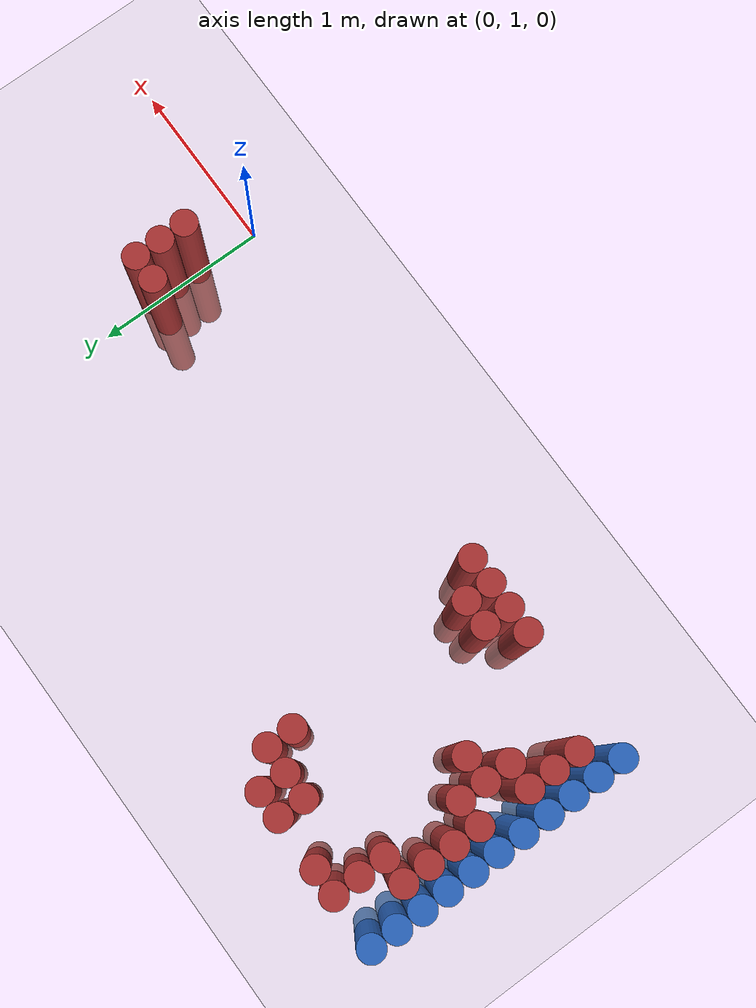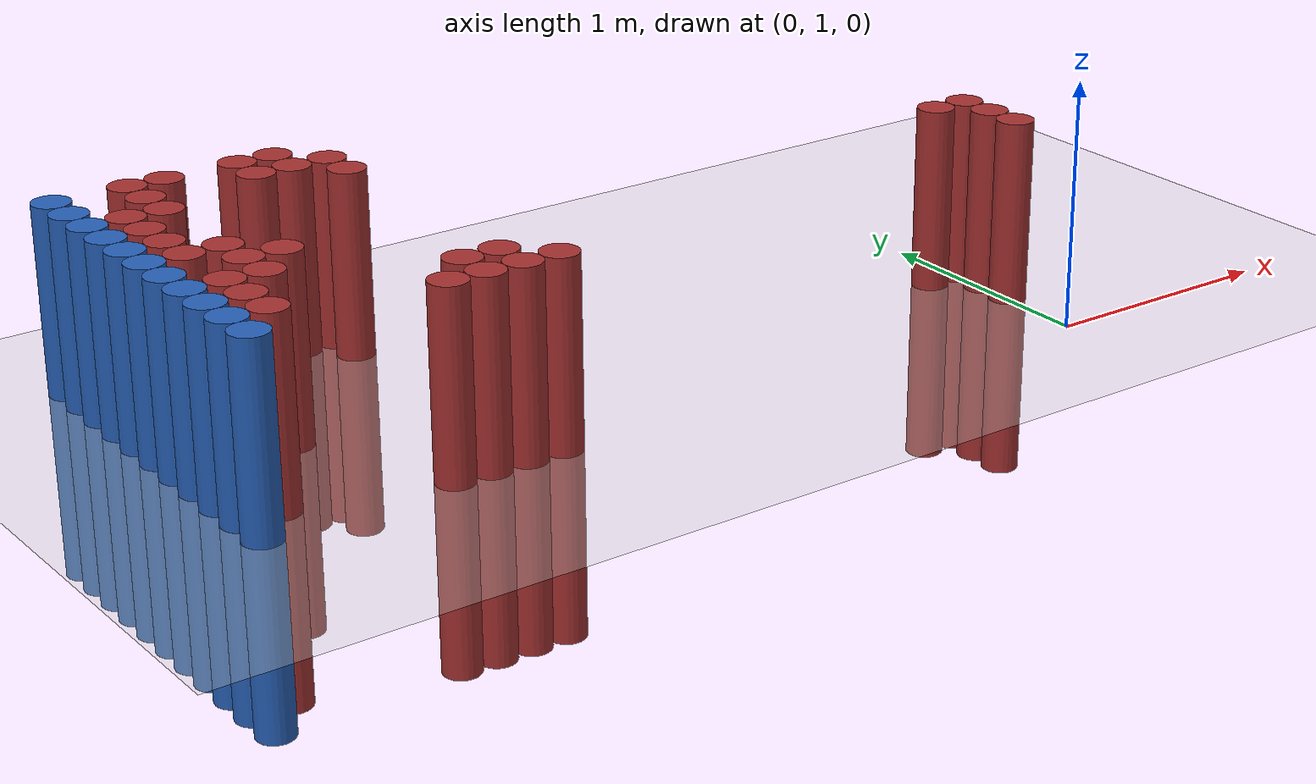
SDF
<sdf version="1.6">
 <world name="default">
  <model name="ground_plane">
   <static>1</static>
   <link name="link">
    <collision name="collision">
     <geometry><plane><normal>0 0 1</normal><size>100 100</size></plane></geometry>
     <surface><friction><ode><mu>100</mu><mu2>50</mu2></ode></friction></surface>
    </collision>
    <visual name="visual">
     <cast_shadows>0</cast_shadows>
     <geometry><plane><normal>0 0 1</normal><size>100 100</size></plane></geometry>
     <material>
      <script><uri>file://media/materials/scripts/gazebo.material</uri><name>Gazebo/Grey</name></script>
     </material>
    </visual>
   </link>
  </model>
  <model name="unit_cylinder_131">
   <static>1</static>
   <pose>-3.425000 1.225000 0.000000 0.000000 0.000000 0.000000</pose>
   <link name="link">
    <inertial>
     <mass>1</mass>
     <inertia><ixx>0.145833</ixx><ixy>0</ixy><ixz>0</ixz><iyy>0.145833</iyy><iyz>0</iyz><izz>0.125</izz></inertia>
    </inertial>
    <collision name="collision">
     <geometry><cylinder><radius>0.075000</radius><length>1.5</length></cylinder></geometry>
    </collision>
    <visual name="visual">
     <geometry><cylinder><radius>0.075000</radius><length>1.5</length></cylinder></geometry>
     <material>
      <ambient>0.152000 0.379000 0.720000 1</ambient>
      <diffuse>0.152000 0.379000 0.720000 1</diffuse>
     </material>
     <material>
      <script><name>Gazebo/Grey</name><uri>file://media/materials/scripts/gazebo.material</uri></script>
     </material>
    </visual>
   </link>
  </model>
  <model name="unit_cylinder_133">
   <static>1</static>
   <pose>-3.425000 1.375000 0.000000 0.000000 0.000000 0.000000</pose>
   <link name="link">
    <inertial>
     <mass>1</mass>
     <inertia><ixx>0.145833</ixx><ixy>0</ixy><ixz>0</ixz><iyy>0.145833</iyy><iyz>0</iyz><izz>0.125</izz></inertia>
    </inertial>
    <collision name="collision">
     <geometry><cylinder><radius>0.075000</radius><length>1.5</length></cylinder></geometry>
    </collision>
    <visual name="visual">
     <geometry><cylinder><radius>0.075000</radius><length>1.5</length></cylinder></geometry>
     <material>
      <ambient>0.152000 0.379000 0.720000 1</ambient>
      <diffuse>0.152000 0.379000 0.720000 1</diffuse>
     </material>
     <material>
      <script><name>Gazebo/Grey</name><uri>file://media/materials/scripts/gazebo.material</uri></script>
     </material>
    </visual>
   </link>
  </model>
  <model name="unit_cylinder_135">
   <static>1</static>
   <pose>-3.425000 1.525000 0.000000 0.000000 0.000000 0.000000</pose>
   <link name="link">
    <inertial>
     <mass>1</mass>
     <inertia><ixx>0.145833</ixx><ixy>0</ixy><ixz>0</ixz><iyy>0.145833</iyy><iyz>0</iyz><izz>0.125</izz></inertia>
    </inertial>
    <collision name="collision">
     <geometry><cylinder><radius>0.075000</radius><length>1.5</length></cylinder></geometry>
    </collision>
    <visual name="visual">
     <geometry><cylinder><radius>0.075000</radius><length>1.5</length></cylinder></geometry>
     <material>
      <ambient>0.152000 0.379000 0.720000 1</ambient>
      <diffuse>0.152000 0.379000 0.720000 1</diffuse>
     </material>
     <material>
      <script><name>Gazebo/Grey</name><uri>file://media/materials/scripts/gazebo.material</uri></script>
     </material>
    </visual>
   </link>
  </model>
  <model name="unit_cylinder_137">
   <static>1</static>
   <pose>-3.425000 1.675000 0.000000 0.000000 0.000000 0.000000</pose>
   <link name="link">
    <inertial>
     <mass>1</mass>
     <inertia><ixx>0.145833</ixx><ixy>0</ixy><ixz>0</ixz><iyy>0.145833</iyy><iyz>0</iyz><izz>0.125</izz></inertia>
    </inertial>
    <collision name="collision">
     <geometry><cylinder><radius>0.075000</radius><length>1.5</length></cylinder></geometry>
    </collision>
    <visual name="visual">
     <geometry><cylinder><radius>0.075000</radius><length>1.5</length></cylinder></geometry>
     <material>
      <ambient>0.152000 0.379000 0.720000 1</ambient>
      <diffuse>0.152000 0.379000 0.720000 1</diffuse>
     </material>
     <material>
      <script><name>Gazebo/Grey</name><uri>file://media/materials/scripts/gazebo.material</uri></script>
     </material>
    </visual>
   </link>
  </model>
  <model name="unit_cylinder_139">
   <static>1</static>
   <pose>-3.425000 1.825000 0.000000 0.000000 0.000000 0.000000</pose>
   <link name="link">
    <inertial>
     <mass>1</mass>
     <inertia><ixx>0.145833</ixx><ixy>0</ixy><ixz>0</ixz><iyy>0.145833</iyy><iyz>0</iyz><izz>0.125</izz></inertia>
    </inertial>
    <collision name="collision">
     <geometry><cylinder><radius>0.075000</radius><length>1.5</length></cylinder></geometry>
    </collision>
    <visual name="visual">
     <geometry><cylinder><radius>0.075000</radius><length>1.5</length></cylinder></geometry>
     <material>
      <ambient>0.152000 0.379000 0.720000 1</ambient>
      <diffuse>0.152000 0.379000 0.720000 1</diffuse>
     </material>
     <material>
      <script><name>Gazebo/Grey</name><uri>file://media/materials/scripts/gazebo.material</uri></script>
     </material>
    </visual>
   </link>
  </model>
  <model name="unit_cylinder_141">
   <static>1</static>
   <pose>-3.425000 1.975000 0.000000 0.000000 0.000000 0.000000</pose>
   <link name="link">
    <inertial>
     <mass>1</mass>
     <inertia><ixx>0.145833</ixx><ixy>0</ixy><ixz>0</ixz><iyy>0.145833</iyy><iyz>0</iyz><izz>0.125</izz></inertia>
    </inertial>
    <collision name="collision">
     <geometry><cylinder><radius>0.075000</radius><length>1.5</length></cylinder></geometry>
    </collision>
    <visual name="visual">
     <geometry><cylinder><radius>0.075000</radius><length>1.5</length></cylinder></geometry>
     <material>
      <ambient>0.152000 0.379000 0.720000 1</ambient>
      <diffuse>0.152000 0.379000 0.720000 1</diffuse>
     </material>
     <material>
      <script><name>Gazebo/Grey</name><uri>file://media/materials/scripts/gazebo.material</uri></script>
     </material>
    </visual>
   </link>
  </model>
  <model name="unit_cylinder_143">
   <static>1</static>
   <pose>-3.425000 2.125000 0.000000 0.000000 0.000000 0.000000</pose>
   <link name="link">
    <inertial>
     <mass>1</mass>
     <inertia><ixx>0.145833</ixx><ixy>0</ixy><ixz>0</ixz><iyy>0.145833</iyy><iyz>0</iyz><izz>0.125</izz></inertia>
    </inertial>
    <collision name="collision">
     <geometry><cylinder><radius>0.075000</radius><length>1.5</length></cylinder></geometry>
    </collision>
    <visual name="visual">
     <geometry><cylinder><radius>0.075000</radius><length>1.5</length></cylinder></geometry>
     <material>
      <ambient>0.152000 0.379000 0.720000 1</ambient>
      <diffuse>0.152000 0.379000 0.720000 1</diffuse>
     </material>
     <material>
      <script><name>Gazebo/Grey</name><uri>file://media/materials/scripts/gazebo.material</uri></script>
     </material>
    </visual>
   </link>
  </model>
  <model name="unit_cylinder_145">
   <static>1</static>
   <pose>-3.425000 2.275000 0.000000 0.000000 0.000000 0.000000</pose>
   <link name="link">
    <inertial>
     <mass>1</mass>
     <inertia><ixx>0.145833</ixx><ixy>0</ixy><ixz>0</ixz><iyy>0.145833</iyy><iyz>0</iyz><izz>0.125</izz></inertia>
    </inertial>
    <collision name="collision">
     <geometry><cylinder><radius>0.075000</radius><length>1.5</length></cylinder></geometry>
    </collision>
    <visual name="visual">
     <geometry><cylinder><radius>0.075000</radius><length>1.5</length></cylinder></geometry>
     <material>
      <ambient>0.152000 0.379000 0.720000 1</ambient>
      <diffuse>0.152000 0.379000 0.720000 1</diffuse>
     </material>
     <material>
      <script><name>Gazebo/Grey</name><uri>file://media/materials/scripts/gazebo.material</uri></script>
     </material>
    </visual>
   </link>
  </model>
  <model name="unit_cylinder_147">
   <static>1</static>
   <pose>-3.425000 2.425000 0.000000 0.000000 0.000000 0.000000</pose>
   <link name="link">
    <inertial>
     <mass>1</mass>
     <inertia><ixx>0.145833</ixx><ixy>0</ixy><ixz>0</ixz><iyy>0.145833</iyy><iyz>0</iyz><izz>0.125</izz></inertia>
    </inertial>
    <collision name="collision">
     <geometry><cylinder><radius>0.075000</radius><length>1.5</length></cylinder></geometry>
    </collision>
    <visual name="visual">
     <geometry><cylinder><radius>0.075000</radius><length>1.5</length></cylinder></geometry>
     <material>
      <ambient>0.152000 0.379000 0.720000 1</ambient>
      <diffuse>0.152000 0.379000 0.720000 1</diffuse>
     </material>
     <material>
      <script><name>Gazebo/Grey</name><uri>file://media/materials/scripts/gazebo.material</uri></script>
     </material>
    </visual>
   </link>
  </model>
  <model name="unit_cylinder_149">
   <static>1</static>
   <pose>-3.425000 2.575000 0.000000 0.000000 0.000000 0.000000</pose>
   <link name="link">
    <inertial>
     <mass>1</mass>
     <inertia><ixx>0.145833</ixx><ixy>0</ixy><ixz>0</ixz><iyy>0.145833</iyy><iyz>0</iyz><izz>0.125</izz></inertia>
    </inertial>
    <collision name="collision">
     <geometry><cylinder><radius>0.075000</radius><length>1.5</length></cylinder></geometry>
    </collision>
    <visual name="visual">
     <geometry><cylinder><radius>0.075000</radius><length>1.5</length></cylinder></geometry>
     <material>
      <ambient>0.152000 0.379000 0.720000 1</ambient>
      <diffuse>0.152000 0.379000 0.720000 1</diffuse>
     </material>
     <material>
      <script><name>Gazebo/Grey</name><uri>file://media/materials/scripts/gazebo.material</uri></script>
     </material>
    </visual>
   </link>
  </model>
  <model name="unit_cylinder_151">
   <static>1</static>
   <pose>-3.425000 2.725000 0.000000 0.000000 0.000000 0.000000</pose>
   <link name="link">
    <inertial>
     <mass>1</mass>
     <inertia><ixx>0.145833</ixx><ixy>0</ixy><ixz>0</ixz><iyy>0.145833</iyy><iyz>0</iyz><izz>0.125</izz></inertia>
    </inertial>
    <collision name="collision">
     <geometry><cylinder><radius>0.075000</radius><length>1.5</length></cylinder></geometry>
    </collision>
    <visual name="visual">
     <geometry><cylinder><radius>0.075000</radius><length>1.5</length></cylinder></geometry>
     <material>
      <ambient>0.152000 0.379000 0.720000 1</ambient>
      <diffuse>0.152000 0.379000 0.720000 1</diffuse>
     </material>
     <material>
      <script><name>Gazebo/Grey</name><uri>file://media/materials/scripts/gazebo.material</uri></script>
     </material>
    </visual>
   </link>
  </model>
  <model name="unit_cylinder_229">
   <static>1</static>
   <pose>-3.425000 1.225000 0.000000 0.000000 0.000000 0.000000</pose>
   <link name="link">
    <inertial>
     <mass>1</mass>
     <inertia><ixx>0.145833</ixx><ixy>0</ixy><ixz>0</ixz><iyy>0.145833</iyy><iyz>0</iyz><izz>0.125</izz></inertia>
    </inertial>
    <collision name="collision">
     <geometry><cylinder><radius>0.075000</radius><length>1.5</length></cylinder></geometry>
    </collision>
    <visual name="visual">
     <geometry><cylinder><radius>0.075000</radius><length>1.5</length></cylinder></geometry>
     <material>
      <ambient>0.152000 0.379000 0.720000 1</ambient>
      <diffuse>0.152000 0.379000 0.720000 1</diffuse>
     </material>
     <material>
      <script><name>Gazebo/Grey</name><uri>file://media/materials/scripts/gazebo.material</uri></script>
     </material>
    </visual>
   </link>
  </model>
  <model name="unit_cylinder_230">
   <static>1</static>
   <pose>-3.425000 1.375000 0.000000 0.000000 0.000000 0.000000</pose>
   <link name="link">
    <inertial>
     <mass>1</mass>
     <inertia><ixx>0.145833</ixx><ixy>0</ixy><ixz>0</ixz><iyy>0.145833</iyy><iyz>0</iyz><izz>0.125</izz></inertia>
    </inertial>
    <collision name="collision">
     <geometry><cylinder><radius>0.075000</radius><length>1.5</length></cylinder></geometry>
    </collision>
    <visual name="visual">
     <geometry><cylinder><radius>0.075000</radius><length>1.5</length></cylinder></geometry>
     <material>
      <ambient>0.152000 0.379000 0.720000 1</ambient>
      <diffuse>0.152000 0.379000 0.720000 1</diffuse>
     </material>
     <material>
      <script><name>Gazebo/Grey</name><uri>file://media/materials/scripts/gazebo.material</uri></script>
     </material>
    </visual>
   </link>
  </model>
  <model name="unit_cylinder_231">
   <static>1</static>
   <pose>-3.425000 1.525000 0.000000 0.000000 0.000000 0.000000</pose>
   <link name="link">
    <inertial>
     <mass>1</mass>
     <inertia><ixx>0.145833</ixx><ixy>0</ixy><ixz>0</ixz><iyy>0.145833</iyy><iyz>0</iyz><izz>0.125</izz></inertia>
    </inertial>
    <collision name="collision">
     <geometry><cylinder><radius>0.075000</radius><length>1.5</length></cylinder></geometry>
    </collision>
    <visual name="visual">
     <geometry><cylinder><radius>0.075000</radius><length>1.5</length></cylinder></geometry>
     <material>
      <ambient>0.152000 0.379000 0.720000 1</ambient>
      <diffuse>0.152000 0.379000 0.720000 1</diffuse>
     </material>
     <material>
      <script><name>Gazebo/Grey</name><uri>file://media/materials/scripts/gazebo.material</uri></script>
     </material>
    </visual>
   </link>
  </model>
  <model name="unit_cylinder_232">
   <static>1</static>
   <pose>-3.425000 1.675000 0.000000 0.000000 0.000000 0.000000</pose>
   <link name="link">
    <inertial>
     <mass>1</mass>
     <inertia><ixx>0.145833</ixx><ixy>0</ixy><ixz>0</ixz><iyy>0.145833</iyy><iyz>0</iyz><izz>0.125</izz></inertia>
    </inertial>
    <collision name="collision">
     <geometry><cylinder><radius>0.075000</radius><length>1.5</length></cylinder></geometry>
    </collision>
    <visual name="visual">
     <geometry><cylinder><radius>0.075000</radius><length>1.5</length></cylinder></geometry>
     <material>
      <ambient>0.152000 0.379000 0.720000 1</ambient>
      <diffuse>0.152000 0.379000 0.720000 1</diffuse>
     </material>
     <material>
      <script><name>Gazebo/Grey</name><uri>file://media/materials/scripts/gazebo.material</uri></script>
     </material>
    </visual>
   </link>
  </model>
  <model name="unit_cylinder_233">
   <static>1</static>
   <pose>-3.425000 1.825000 0.000000 0.000000 0.000000 0.000000</pose>
   <link name="link">
    <inertial>
     <mass>1</mass>
     <inertia><ixx>0.145833</ixx><ixy>0</ixy><ixz>0</ixz><iyy>0.145833</iyy><iyz>0</iyz><izz>0.125</izz></inertia>
    </inertial>
    <collision name="collision">
     <geometry><cylinder><radius>0.075000</radius><length>1.5</length></cylinder></geometry>
    </collision>
    <visual name="visual">
     <geometry><cylinder><radius>0.075000</radius><length>1.5</length></cylinder></geometry>
     <material>
      <ambient>0.152000 0.379000 0.720000 1</ambient>
      <diffuse>0.152000 0.379000 0.720000 1</diffuse>
     </material>
     <material>
      <script><name>Gazebo/Grey</name><uri>file://media/materials/scripts/gazebo.material</uri></script>
     </material>
    </visual>
   </link>
  </model>
  <model name="unit_cylinder_234">
   <static>1</static>
   <pose>-3.425000 1.975000 0.000000 0.000000 0.000000 0.000000</pose>
   <link name="link">
    <inertial>
     <mass>1</mass>
     <inertia><ixx>0.145833</ixx><ixy>0</ixy><ixz>0</ixz><iyy>0.145833</iyy><iyz>0</iyz><izz>0.125</izz></inertia>
    </inertial>
    <collision name="collision">
     <geometry><cylinder><radius>0.075000</radius><length>1.5</length></cylinder></geometry>
    </collision>
    <visual name="visual">
     <geometry><cylinder><radius>0.075000</radius><length>1.5</length></cylinder></geometry>
     <material>
      <ambient>0.152000 0.379000 0.720000 1</ambient>
      <diffuse>0.152000 0.379000 0.720000 1</diffuse>
     </material>
     <material>
      <script><name>Gazebo/Grey</name><uri>file://media/materials/scripts/gazebo.material</uri></script>
     </material>
    </visual>
   </link>
  </model>
  <model name="unit_cylinder_235">
   <static>1</static>
   <pose>-3.425000 2.125000 0.000000 0.000000 0.000000 0.000000</pose>
   <link name="link">
    <inertial>
     <mass>1</mass>
     <inertia><ixx>0.145833</ixx><ixy>0</ixy><ixz>0</ixz><iyy>0.145833</iyy><iyz>0</iyz><izz>0.125</izz></inertia>
    </inertial>
    <collision name="collision">
     <geometry><cylinder><radius>0.075000</radius><length>1.5</length></cylinder></geometry>
    </collision>
    <visual name="visual">
     <geometry><cylinder><radius>0.075000</radius><length>1.5</length></cylinder></geometry>
     <material>
      <ambient>0.152000 0.379000 0.720000 1</ambient>
      <diffuse>0.152000 0.379000 0.720000 1</diffuse>
     </material>
     <material>
      <script><name>Gazebo/Grey</name><uri>file://media/materials/scripts/gazebo.material</uri></script>
     </material>
    </visual>
   </link>
  </model>
  <model name="unit_cylinder_236">
   <static>1</static>
   <pose>-3.425000 2.275000 0.000000 0.000000 0.000000 0.000000</pose>
   <link name="link">
    <inertial>
     <mass>1</mass>
     <inertia><ixx>0.145833</ixx><ixy>0</ixy><ixz>0</ixz><iyy>0.145833</iyy><iyz>0</iyz><izz>0.125</izz></inertia>
    </inertial>
    <collision name="collision">
     <geometry><cylinder><radius>0.075000</radius><length>1.5</length></cylinder></geometry>
    </collision>
    <visual name="visual">
     <geometry><cylinder><radius>0.075000</radius><length>1.5</length></cylinder></geometry>
     <material>
      <ambient>0.152000 0.379000 0.720000 1</ambient>
      <diffuse>0.152000 0.379000 0.720000 1</diffuse>
     </material>
     <material>
      <script><name>Gazebo/Grey</name><uri>file://media/materials/scripts/gazebo.material</uri></script>
     </material>
    </visual>
   </link>
  </model>
  <model name="unit_cylinder_237">
   <static>1</static>
   <pose>-3.425000 2.425000 0.000000 0.000000 0.000000 0.000000</pose>
   <link name="link">
    <inertial>
     <mass>1</mass>
     <inertia><ixx>0.145833</ixx><ixy>0</ixy><ixz>0</ixz><iyy>0.145833</iyy><iyz>0</iyz><izz>0.125</izz></inertia>
    </inertial>
    <collision name="collision">
     <geometry><cylinder><radius>0.075000</radius><length>1.5</length></cylinder></geometry>
    </collision>
    <visual name="visual">
     <geometry><cylinder><radius>0.075000</radius><length>1.5</length></cylinder></geometry>
     <material>
      <ambient>0.152000 0.379000 0.720000 1</ambient>
      <diffuse>0.152000 0.379000 0.720000 1</diffuse>
     </material>
     <material>
      <script><name>Gazebo/Grey</name><uri>file://media/materials/scripts/gazebo.material</uri></script>
     </material>
    </visual>
   </link>
  </model>
  <model name="unit_cylinder_238">
   <static>1</static>
   <pose>-3.425000 2.575000 0.000000 0.000000 0.000000 0.000000</pose>
   <link name="link">
    <inertial>
     <mass>1</mass>
     <inertia><ixx>0.145833</ixx><ixy>0</ixy><ixz>0</ixz><iyy>0.145833</iyy><iyz>0</iyz><izz>0.125</izz></inertia>
    </inertial>
    <collision name="collision">
     <geometry><cylinder><radius>0.075000</radius><length>1.5</length></cylinder></geometry>
    </collision>
    <visual name="visual">
     <geometry><cylinder><radius>0.075000</radius><length>1.5</length></cylinder></geometry>
     <material>
      <ambient>0.152000 0.379000 0.720000 1</ambient>
      <diffuse>0.152000 0.379000 0.720000 1</diffuse>
     </material>
     <material>
      <script><name>Gazebo/Grey</name><uri>file://media/materials/scripts/gazebo.material</uri></script>
     </material>
    </visual>
   </link>
  </model>
  <model name="unit_cylinder_239">
   <static>1</static>
   <pose>-3.425000 2.725000 0.000000 0.000000 0.000000 0.000000</pose>
   <link name="link">
    <inertial>
     <mass>1</mass>
     <inertia><ixx>0.145833</ixx><ixy>0</ixy><ixz>0</ixz><iyy>0.145833</iyy><iyz>0</iyz><izz>0.125</izz></inertia>
    </inertial>
    <collision name="collision">
     <geometry><cylinder><radius>0.075000</radius><length>1.5</length></cylinder></geometry>
    </collision>
    <visual name="visual">
     <geometry><cylinder><radius>0.075000</radius><length>1.5</length></cylinder></geometry>
     <material>
      <ambient>0.152000 0.379000 0.720000 1</ambient>
      <diffuse>0.152000 0.379000 0.720000 1</diffuse>
     </material>
     <material>
      <script><name>Gazebo/Grey</name><uri>file://media/materials/scripts/gazebo.material</uri></script>
     </material>
    </visual>
   </link>
  </model>
  <model name="unit_cylinder_265">
   <static>1</static>
   <pose>-3.275000 1.375000 0.000000 0.000000 0.000000 0.000000</pose>
   <link name="link">
    <inertial>
     <mass>1</mass>
     <inertia><ixx>0.145833</ixx><ixy>0</ixy><ixz>0</ixz><iyy>0.145833</iyy><iyz>0</iyz><izz>0.125</izz></inertia>
    </inertial>
    <collision name="collision">
     <geometry><cylinder><radius>0.075000</radius><length>1.5</length></cylinder></geometry>
    </collision>
    <visual name="visual">
     <geometry><cylinder><radius>0.075000</radius><length>1.5</length></cylinder></geometry>
     <material>
      <ambient>0.648000 0.192000 0.192000 1</ambient>
      <diffuse>0.648000 0.192000 0.192000 1</diffuse>
     </material>
     <material>
      <script><name>Gazebo/Grey</name><uri>file://media/materials/scripts/gazebo.material</uri></script>
     </material>
    </visual>
   </link>
  </model>
  <model name="unit_cylinder_266">
   <static>1</static>
   <pose>-3.275000 1.525000 0.000000 0.000000 0.000000 0.000000</pose>
   <link name="link">
    <inertial>
     <mass>1</mass>
     <inertia><ixx>0.145833</ixx><ixy>0</ixy><ixz>0</ixz><iyy>0.145833</iyy><iyz>0</iyz><izz>0.125</izz></inertia>
    </inertial>
    <collision name="collision">
     <geometry><cylinder><radius>0.075000</radius><length>1.5</length></cylinder></geometry>
    </collision>
    <visual name="visual">
     <geometry><cylinder><radius>0.075000</radius><length>1.5</length></cylinder></geometry>
     <material>
      <ambient>0.648000 0.192000 0.192000 1</ambient>
      <diffuse>0.648000 0.192000 0.192000 1</diffuse>
     </material>
     <material>
      <script><name>Gazebo/Grey</name><uri>file://media/materials/scripts/gazebo.material</uri></script>
     </material>
    </visual>
   </link>
  </model>
  <model name="unit_cylinder_267">
   <static>1</static>
   <pose>-3.275000 1.675000 0.000000 0.000000 0.000000 0.000000</pose>
   <link name="link">
    <inertial>
     <mass>1</mass>
     <inertia><ixx>0.145833</ixx><ixy>0</ixy><ixz>0</ixz><iyy>0.145833</iyy><iyz>0</iyz><izz>0.125</izz></inertia>
    </inertial>
    <collision name="collision">
     <geometry><cylinder><radius>0.075000</radius><length>1.5</length></cylinder></geometry>
    </collision>
    <visual name="visual">
     <geometry><cylinder><radius>0.075000</radius><length>1.5</length></cylinder></geometry>
     <material>
      <ambient>0.648000 0.192000 0.192000 1</ambient>
      <diffuse>0.648000 0.192000 0.192000 1</diffuse>
     </material>
     <material>
      <script><name>Gazebo/Grey</name><uri>file://media/materials/scripts/gazebo.material</uri></script>
     </material>
    </visual>
   </link>
  </model>
  <model name="unit_cylinder_268">
   <static>1</static>
   <pose>-3.275000 1.975000 0.000000 0.000000 0.000000 0.000000</pose>
   <link name="link">
    <inertial>
     <mass>1</mass>
     <inertia><ixx>0.145833</ixx><ixy>0</ixy><ixz>0</ixz><iyy>0.145833</iyy><iyz>0</iyz><izz>0.125</izz></inertia>
    </inertial>
    <collision name="collision">
     <geometry><cylinder><radius>0.075000</radius><length>1.5</length></cylinder></geometry>
    </collision>
    <visual name="visual">
     <geometry><cylinder><radius>0.075000</radius><length>1.5</length></cylinder></geometry>
     <material>
      <ambient>0.648000 0.192000 0.192000 1</ambient>
      <diffuse>0.648000 0.192000 0.192000 1</diffuse>
     </material>
     <material>
      <script><name>Gazebo/Grey</name><uri>file://media/materials/scripts/gazebo.material</uri></script>
     </material>
    </visual>
   </link>
  </model>
  <model name="unit_cylinder_269">
   <static>1</static>
   <pose>-3.275000 2.125000 0.000000 0.000000 0.000000 0.000000</pose>
   <link name="link">
    <inertial>
     <mass>1</mass>
     <inertia><ixx>0.145833</ixx><ixy>0</ixy><ixz>0</ixz><iyy>0.145833</iyy><iyz>0</iyz><izz>0.125</izz></inertia>
    </inertial>
    <collision name="collision">
     <geometry><cylinder><radius>0.075000</radius><length>1.5</length></cylinder></geometry>
    </collision>
    <visual name="visual">
     <geometry><cylinder><radius>0.075000</radius><length>1.5</length></cylinder></geometry>
     <material>
      <ambient>0.648000 0.192000 0.192000 1</ambient>
      <diffuse>0.648000 0.192000 0.192000 1</diffuse>
     </material>
     <material>
      <script><name>Gazebo/Grey</name><uri>file://media/materials/scripts/gazebo.material</uri></script>
     </material>
    </visual>
   </link>
  </model>
  <model name="unit_cylinder_270">
   <static>1</static>
   <pose>-3.275000 2.275000 0.000000 0.000000 0.000000 0.000000</pose>
   <link name="link">
    <inertial>
     <mass>1</mass>
     <inertia><ixx>0.145833</ixx><ixy>0</ixy><ixz>0</ixz><iyy>0.145833</iyy><iyz>0</iyz><izz>0.125</izz></inertia>
    </inertial>
    <collision name="collision">
     <geometry><cylinder><radius>0.075000</radius><length>1.5</length></cylinder></geometry>
    </collision>
    <visual name="visual">
     <geometry><cylinder><radius>0.075000</radius><length>1.5</length></cylinder></geometry>
     <material>
      <ambient>0.648000 0.192000 0.192000 1</ambient>
      <diffuse>0.648000 0.192000 0.192000 1</diffuse>
     </material>
     <material>
      <script><name>Gazebo/Grey</name><uri>file://media/materials/scripts/gazebo.material</uri></script>
     </material>
    </visual>
   </link>
  </model>
  <model name="unit_cylinder_271">
   <static>1</static>
   <pose>-3.275000 2.425000 0.000000 0.000000 0.000000 0.000000</pose>
   <link name="link">
    <inertial>
     <mass>1</mass>
     <inertia><ixx>0.145833</ixx><ixy>0</ixy><ixz>0</ixz><iyy>0.145833</iyy><iyz>0</iyz><izz>0.125</izz></inertia>
    </inertial>
    <collision name="collision">
     <geometry><cylinder><radius>0.075000</radius><length>1.5</length></cylinder></geometry>
    </collision>
    <visual name="visual">
     <geometry><cylinder><radius>0.075000</radius><length>1.5</length></cylinder></geometry>
     <material>
      <ambient>0.648000 0.192000 0.192000 1</ambient>
      <diffuse>0.648000 0.192000 0.192000 1</diffuse>
     </material>
     <material>
      <script><name>Gazebo/Grey</name><uri>file://media/materials/scripts/gazebo.material</uri></script>
     </material>
    </visual>
   </link>
  </model>
  <model name="unit_cylinder_290">
   <static>1</static>
   <pose>-3.125000 1.675000 0.000000 0.000000 0.000000 0.000000</pose>
   <link name="link">
    <inertial>
     <mass>1</mass>
     <inertia><ixx>0.145833</ixx><ixy>0</ixy><ixz>0</ixz><iyy>0.145833</iyy><iyz>0</iyz><izz>0.125</izz></inertia>
    </inertial>
    <collision name="collision">
     <geometry><cylinder><radius>0.075000</radius><length>1.5</length></cylinder></geometry>
    </collision>
    <visual name="visual">
     <geometry><cylinder><radius>0.075000</radius><length>1.5</length></cylinder></geometry>
     <material>
      <ambient>0.648000 0.192000 0.192000 1</ambient>
      <diffuse>0.648000 0.192000 0.192000 1</diffuse>
     </material>
     <material>
      <script><name>Gazebo/Grey</name><uri>file://media/materials/scripts/gazebo.material</uri></script>
     </material>
    </visual>
   </link>
  </model>
  <model name="unit_cylinder_291">
   <static>1</static>
   <pose>-3.125000 1.825000 0.000000 0.000000 0.000000 0.000000</pose>
   <link name="link">
    <inertial>
     <mass>1</mass>
     <inertia><ixx>0.145833</ixx><ixy>0</ixy><ixz>0</ixz><iyy>0.145833</iyy><iyz>0</iyz><izz>0.125</izz></inertia>
    </inertial>
    <collision name="collision">
     <geometry><cylinder><radius>0.075000</radius><length>1.5</length></cylinder></geometry>
    </collision>
    <visual name="visual">
     <geometry><cylinder><radius>0.075000</radius><length>1.5</length></cylinder></geometry>
     <material>
      <ambient>0.648000 0.192000 0.192000 1</ambient>
      <diffuse>0.648000 0.192000 0.192000 1</diffuse>
     </material>
     <material>
      <script><name>Gazebo/Grey</name><uri>file://media/materials/scripts/gazebo.material</uri></script>
     </material>
    </visual>
   </link>
  </model>
  <model name="unit_cylinder_292">
   <static>1</static>
   <pose>-3.125000 1.975000 0.000000 0.000000 0.000000 0.000000</pose>
   <link name="link">
    <inertial>
     <mass>1</mass>
     <inertia><ixx>0.145833</ixx><ixy>0</ixy><ixz>0</ixz><iyy>0.145833</iyy><iyz>0</iyz><izz>0.125</izz></inertia>
    </inertial>
    <collision name="collision">
     <geometry><cylinder><radius>0.075000</radius><length>1.5</length></cylinder></geometry>
    </collision>
    <visual name="visual">
     <geometry><cylinder><radius>0.075000</radius><length>1.5</length></cylinder></geometry>
     <material>
      <ambient>0.648000 0.192000 0.192000 1</ambient>
      <diffuse>0.648000 0.192000 0.192000 1</diffuse>
     </material>
     <material>
      <script><name>Gazebo/Grey</name><uri>file://media/materials/scripts/gazebo.material</uri></script>
     </material>
    </visual>
   </link>
  </model>
  <model name="unit_cylinder_293">
   <static>1</static>
   <pose>-3.125000 2.425000 0.000000 0.000000 0.000000 0.000000</pose>
   <link name="link">
    <inertial>
     <mass>1</mass>
     <inertia><ixx>0.145833</ixx><ixy>0</ixy><ixz>0</ixz><iyy>0.145833</iyy><iyz>0</iyz><izz>0.125</izz></inertia>
    </inertial>
    <collision name="collision">
     <geometry><cylinder><radius>0.075000</radius><length>1.5</length></cylinder></geometry>
    </collision>
    <visual name="visual">
     <geometry><cylinder><radius>0.075000</radius><length>1.5</length></cylinder></geometry>
     <material>
      <ambient>0.648000 0.192000 0.192000 1</ambient>
      <diffuse>0.648000 0.192000 0.192000 1</diffuse>
     </material>
     <material>
      <script><name>Gazebo/Grey</name><uri>file://media/materials/scripts/gazebo.material</uri></script>
     </material>
    </visual>
   </link>
  </model>
  <model name="unit_cylinder_294">
   <static>1</static>
   <pose>-3.125000 2.575000 0.000000 0.000000 0.000000 0.000000</pose>
   <link name="link">
    <inertial>
     <mass>1</mass>
     <inertia><ixx>0.145833</ixx><ixy>0</ixy><ixz>0</ixz><iyy>0.145833</iyy><iyz>0</iyz><izz>0.125</izz></inertia>
    </inertial>
    <collision name="collision">
     <geometry><cylinder><radius>0.075000</radius><length>1.5</length></cylinder></geometry>
    </collision>
    <visual name="visual">
     <geometry><cylinder><radius>0.075000</radius><length>1.5</length></cylinder></geometry>
     <material>
      <ambient>0.648000 0.192000 0.192000 1</ambient>
      <diffuse>0.648000 0.192000 0.192000 1</diffuse>
     </material>
     <material>
      <script><name>Gazebo/Grey</name><uri>file://media/materials/scripts/gazebo.material</uri></script>
     </material>
    </visual>
   </link>
  </model>
  <model name="unit_cylinder_295">
   <static>1</static>
   <pose>-3.125000 2.725000 0.000000 0.000000 0.000000 0.000000</pose>
   <link name="link">
    <inertial>
     <mass>1</mass>
     <inertia><ixx>0.145833</ixx><ixy>0</ixy><ixz>0</ixz><iyy>0.145833</iyy><iyz>0</iyz><izz>0.125</izz></inertia>
    </inertial>
    <collision name="collision">
     <geometry><cylinder><radius>0.075000</radius><length>1.5</length></cylinder></geometry>
    </collision>
    <visual name="visual">
     <geometry><cylinder><radius>0.075000</radius><length>1.5</length></cylinder></geometry>
     <material>
      <ambient>0.648000 0.192000 0.192000 1</ambient>
      <diffuse>0.648000 0.192000 0.192000 1</diffuse>
     </material>
     <material>
      <script><name>Gazebo/Grey</name><uri>file://media/materials/scripts/gazebo.material</uri></script>
     </material>
    </visual>
   </link>
  </model>
  <model name="unit_cylinder_300">
   <static>1</static>
   <pose>-2.975000 1.825000 0.000000 0.000000 0.000000 0.000000</pose>
   <link name="link">
    <inertial>
     <mass>1</mass>
     <inertia><ixx>0.145833</ixx><ixy>0</ixy><ixz>0</ixz><iyy>0.145833</iyy><iyz>0</iyz><izz>0.125</izz></inertia>
    </inertial>
    <collision name="collision">
     <geometry><cylinder><radius>0.075000</radius><length>1.5</length></cylinder></geometry>
    </collision>
    <visual name="visual">
     <geometry><cylinder><radius>0.075000</radius><length>1.5</length></cylinder></geometry>
     <material>
      <ambient>0.648000 0.192000 0.192000 1</ambient>
      <diffuse>0.648000 0.192000 0.192000 1</diffuse>
     </material>
     <material>
      <script><name>Gazebo/Grey</name><uri>file://media/materials/scripts/gazebo.material</uri></script>
     </material>
    </visual>
   </link>
  </model>
  <model name="unit_cylinder_301">
   <static>1</static>
   <pose>-2.975000 2.725000 0.000000 0.000000 0.000000 0.000000</pose>
   <link name="link">
    <inertial>
     <mass>1</mass>
     <inertia><ixx>0.145833</ixx><ixy>0</ixy><ixz>0</ixz><iyy>0.145833</iyy><iyz>0</iyz><izz>0.125</izz></inertia>
    </inertial>
    <collision name="collision">
     <geometry><cylinder><radius>0.075000</radius><length>1.5</length></cylinder></geometry>
    </collision>
    <visual name="visual">
     <geometry><cylinder><radius>0.075000</radius><length>1.5</length></cylinder></geometry>
     <material>
      <ambient>0.648000 0.192000 0.192000 1</ambient>
      <diffuse>0.648000 0.192000 0.192000 1</diffuse>
     </material>
     <material>
      <script><name>Gazebo/Grey</name><uri>file://media/materials/scripts/gazebo.material</uri></script>
     </material>
    </visual>
   </link>
  </model>
  <model name="unit_cylinder_319">
   <static>1</static>
   <pose>-2.675000 1.225000 0.000000 0.000000 0.000000 0.000000</pose>
   <link name="link">
    <inertial>
     <mass>1</mass>
     <inertia><ixx>0.145833</ixx><ixy>0</ixy><ixz>0</ixz><iyy>0.145833</iyy><iyz>0</iyz><izz>0.125</izz></inertia>
    </inertial>
    <collision name="collision">
     <geometry><cylinder><radius>0.075000</radius><length>1.5</length></cylinder></geometry>
    </collision>
    <visual name="visual">
     <geometry><cylinder><radius>0.075000</radius><length>1.5</length></cylinder></geometry>
     <material>
      <ambient>0.648000 0.192000 0.192000 1</ambient>
      <diffuse>0.648000 0.192000 0.192000 1</diffuse>
     </material>
     <material>
      <script><name>Gazebo/Grey</name><uri>file://media/materials/scripts/gazebo.material</uri></script>
     </material>
    </visual>
   </link>
  </model>
  <model name="unit_cylinder_320">
   <static>1</static>
   <pose>-2.675000 2.575000 0.000000 0.000000 0.000000 0.000000</pose>
   <link name="link">
    <inertial>
     <mass>1</mass>
     <inertia><ixx>0.145833</ixx><ixy>0</ixy><ixz>0</ixz><iyy>0.145833</iyy><iyz>0</iyz><izz>0.125</izz></inertia>
    </inertial>
    <collision name="collision">
     <geometry><cylinder><radius>0.075000</radius><length>1.5</length></cylinder></geometry>
    </collision>
    <visual name="visual">
     <geometry><cylinder><radius>0.075000</radius><length>1.5</length></cylinder></geometry>
     <material>
      <ambient>0.648000 0.192000 0.192000 1</ambient>
      <diffuse>0.648000 0.192000 0.192000 1</diffuse>
     </material>
     <material>
      <script><name>Gazebo/Grey</name><uri>file://media/materials/scripts/gazebo.material</uri></script>
     </material>
    </visual>
   </link>
  </model>
  <model name="unit_cylinder_321">
   <static>1</static>
   <pose>-2.675000 2.725000 0.000000 0.000000 0.000000 0.000000</pose>
   <link name="link">
    <inertial>
     <mass>1</mass>
     <inertia><ixx>0.145833</ixx><ixy>0</ixy><ixz>0</ixz><iyy>0.145833</iyy><iyz>0</iyz><izz>0.125</izz></inertia>
    </inertial>
    <collision name="collision">
     <geometry><cylinder><radius>0.075000</radius><length>1.5</length></cylinder></geometry>
    </collision>
    <visual name="visual">
     <geometry><cylinder><radius>0.075000</radius><length>1.5</length></cylinder></geometry>
     <material>
      <ambient>0.648000 0.192000 0.192000 1</ambient>
      <diffuse>0.648000 0.192000 0.192000 1</diffuse>
     </material>
     <material>
      <script><name>Gazebo/Grey</name><uri>file://media/materials/scripts/gazebo.material</uri></script>
     </material>
    </visual>
   </link>
  </model>
  <model name="unit_cylinder_326">
   <static>1</static>
   <pose>-2.525000 1.225000 0.000000 0.000000 0.000000 0.000000</pose>
   <link name="link">
    <inertial>
     <mass>1</mass>
     <inertia><ixx>0.145833</ixx><ixy>0</ixy><ixz>0</ixz><iyy>0.145833</iyy><iyz>0</iyz><izz>0.125</izz></inertia>
    </inertial>
    <collision name="collision">
     <geometry><cylinder><radius>0.075000</radius><length>1.5</length></cylinder></geometry>
    </collision>
    <visual name="visual">
     <geometry><cylinder><radius>0.075000</radius><length>1.5</length></cylinder></geometry>
     <material>
      <ambient>0.648000 0.192000 0.192000 1</ambient>
      <diffuse>0.648000 0.192000 0.192000 1</diffuse>
     </material>
     <material>
      <script><name>Gazebo/Grey</name><uri>file://media/materials/scripts/gazebo.material</uri></script>
     </material>
    </visual>
   </link>
  </model>
  <model name="unit_cylinder_327">
   <static>1</static>
   <pose>-2.525000 1.375000 0.000000 0.000000 0.000000 0.000000</pose>
   <link name="link">
    <inertial>
     <mass>1</mass>
     <inertia><ixx>0.145833</ixx><ixy>0</ixy><ixz>0</ixz><iyy>0.145833</iyy><iyz>0</iyz><izz>0.125</izz></inertia>
    </inertial>
    <collision name="collision">
     <geometry><cylinder><radius>0.075000</radius><length>1.5</length></cylinder></geometry>
    </collision>
    <visual name="visual">
     <geometry><cylinder><radius>0.075000</radius><length>1.5</length></cylinder></geometry>
     <material>
      <ambient>0.648000 0.192000 0.192000 1</ambient>
      <diffuse>0.648000 0.192000 0.192000 1</diffuse>
     </material>
     <material>
      <script><name>Gazebo/Grey</name><uri>file://media/materials/scripts/gazebo.material</uri></script>
     </material>
    </visual>
   </link>
  </model>
  <model name="unit_cylinder_328">
   <static>1</static>
   <pose>-2.525000 2.575000 0.000000 0.000000 0.000000 0.000000</pose>
   <link name="link">
    <inertial>
     <mass>1</mass>
     <inertia><ixx>0.145833</ixx><ixy>0</ixy><ixz>0</ixz><iyy>0.145833</iyy><iyz>0</iyz><izz>0.125</izz></inertia>
    </inertial>
    <collision name="collision">
     <geometry><cylinder><radius>0.075000</radius><length>1.5</length></cylinder></geometry>
    </collision>
    <visual name="visual">
     <geometry><cylinder><radius>0.075000</radius><length>1.5</length></cylinder></geometry>
     <material>
      <ambient>0.648000 0.192000 0.192000 1</ambient>
      <diffuse>0.648000 0.192000 0.192000 1</diffuse>
     </material>
     <material>
      <script><name>Gazebo/Grey</name><uri>file://media/materials/scripts/gazebo.material</uri></script>
     </material>
    </visual>
   </link>
  </model>
  <model name="unit_cylinder_329">
   <static>1</static>
   <pose>-2.525000 2.725000 0.000000 0.000000 0.000000 0.000000</pose>
   <link name="link">
    <inertial>
     <mass>1</mass>
     <inertia><ixx>0.145833</ixx><ixy>0</ixy><ixz>0</ixz><iyy>0.145833</iyy><iyz>0</iyz><izz>0.125</izz></inertia>
    </inertial>
    <collision name="collision">
     <geometry><cylinder><radius>0.075000</radius><length>1.5</length></cylinder></geometry>
    </collision>
    <visual name="visual">
     <geometry><cylinder><radius>0.075000</radius><length>1.5</length></cylinder></geometry>
     <material>
      <ambient>0.648000 0.192000 0.192000 1</ambient>
      <diffuse>0.648000 0.192000 0.192000 1</diffuse>
     </material>
     <material>
      <script><name>Gazebo/Grey</name><uri>file://media/materials/scripts/gazebo.material</uri></script>
     </material>
    </visual>
   </link>
  </model>
  <model name="unit_cylinder_334">
   <static>1</static>
   <pose>-2.375000 1.225000 0.000000 0.000000 0.000000 0.000000</pose>
   <link name="link">
    <inertial>
     <mass>1</mass>
     <inertia><ixx>0.145833</ixx><ixy>0</ixy><ixz>0</ixz><iyy>0.145833</iyy><iyz>0</iyz><izz>0.125</izz></inertia>
    </inertial>
    <collision name="collision">
     <geometry><cylinder><radius>0.075000</radius><length>1.5</length></cylinder></geometry>
    </collision>
    <visual name="visual">
     <geometry><cylinder><radius>0.075000</radius><length>1.5</length></cylinder></geometry>
     <material>
      <ambient>0.648000 0.192000 0.192000 1</ambient>
      <diffuse>0.648000 0.192000 0.192000 1</diffuse>
     </material>
     <material>
      <script><name>Gazebo/Grey</name><uri>file://media/materials/scripts/gazebo.material</uri></script>
     </material>
    </visual>
   </link>
  </model>
  <model name="unit_cylinder_335">
   <static>1</static>
   <pose>-2.375000 1.375000 0.000000 0.000000 0.000000 0.000000</pose>
   <link name="link">
    <inertial>
     <mass>1</mass>
     <inertia><ixx>0.145833</ixx><ixy>0</ixy><ixz>0</ixz><iyy>0.145833</iyy><iyz>0</iyz><izz>0.125</izz></inertia>
    </inertial>
    <collision name="collision">
     <geometry><cylinder><radius>0.075000</radius><length>1.5</length></cylinder></geometry>
    </collision>
    <visual name="visual">
     <geometry><cylinder><radius>0.075000</radius><length>1.5</length></cylinder></geometry>
     <material>
      <ambient>0.648000 0.192000 0.192000 1</ambient>
      <diffuse>0.648000 0.192000 0.192000 1</diffuse>
     </material>
     <material>
      <script><name>Gazebo/Grey</name><uri>file://media/materials/scripts/gazebo.material</uri></script>
     </material>
    </visual>
   </link>
  </model>
  <model name="unit_cylinder_336">
   <static>1</static>
   <pose>-2.375000 2.425000 0.000000 0.000000 0.000000 0.000000</pose>
   <link name="link">
    <inertial>
     <mass>1</mass>
     <inertia><ixx>0.145833</ixx><ixy>0</ixy><ixz>0</ixz><iyy>0.145833</iyy><iyz>0</iyz><izz>0.125</izz></inertia>
    </inertial>
    <collision name="collision">
     <geometry><cylinder><radius>0.075000</radius><length>1.5</length></cylinder></geometry>
    </collision>
    <visual name="visual">
     <geometry><cylinder><radius>0.075000</radius><length>1.5</length></cylinder></geometry>
     <material>
      <ambient>0.648000 0.192000 0.192000 1</ambient>
      <diffuse>0.648000 0.192000 0.192000 1</diffuse>
     </material>
     <material>
      <script><name>Gazebo/Grey</name><uri>file://media/materials/scripts/gazebo.material</uri></script>
     </material>
    </visual>
   </link>
  </model>
  <model name="unit_cylinder_337">
   <static>1</static>
   <pose>-2.375000 2.575000 0.000000 0.000000 0.000000 0.000000</pose>
   <link name="link">
    <inertial>
     <mass>1</mass>
     <inertia><ixx>0.145833</ixx><ixy>0</ixy><ixz>0</ixz><iyy>0.145833</iyy><iyz>0</iyz><izz>0.125</izz></inertia>
    </inertial>
    <collision name="collision">
     <geometry><cylinder><radius>0.075000</radius><length>1.5</length></cylinder></geometry>
    </collision>
    <visual name="visual">
     <geometry><cylinder><radius>0.075000</radius><length>1.5</length></cylinder></geometry>
     <material>
      <ambient>0.648000 0.192000 0.192000 1</ambient>
      <diffuse>0.648000 0.192000 0.192000 1</diffuse>
     </material>
     <material>
      <script><name>Gazebo/Grey</name><uri>file://media/materials/scripts/gazebo.material</uri></script>
     </material>
    </visual>
   </link>
  </model>
  <model name="unit_cylinder_342">
   <static>1</static>
   <pose>-2.225000 1.225000 0.000000 0.000000 0.000000 0.000000</pose>
   <link name="link">
    <inertial>
     <mass>1</mass>
     <inertia><ixx>0.145833</ixx><ixy>0</ixy><ixz>0</ixz><iyy>0.145833</iyy><iyz>0</iyz><izz>0.125</izz></inertia>
    </inertial>
    <collision name="collision">
     <geometry><cylinder><radius>0.075000</radius><length>1.5</length></cylinder></geometry>
    </collision>
    <visual name="visual">
     <geometry><cylinder><radius>0.075000</radius><length>1.5</length></cylinder></geometry>
     <material>
      <ambient>0.648000 0.192000 0.192000 1</ambient>
      <diffuse>0.648000 0.192000 0.192000 1</diffuse>
     </material>
     <material>
      <script><name>Gazebo/Grey</name><uri>file://media/materials/scripts/gazebo.material</uri></script>
     </material>
    </visual>
   </link>
  </model>
  <model name="unit_cylinder_394">
   <static>1</static>
   <pose>-0.125000 1.675000 0.000000 0.000000 0.000000 0.000000</pose>
   <link name="link">
    <inertial>
     <mass>1</mass>
     <inertia><ixx>0.145833</ixx><ixy>0</ixy><ixz>0</ixz><iyy>0.145833</iyy><iyz>0</iyz><izz>0.125</izz></inertia>
    </inertial>
    <collision name="collision">
     <geometry><cylinder><radius>0.075000</radius><length>1.5</length></cylinder></geometry>
    </collision>
    <visual name="visual">
     <geometry><cylinder><radius>0.075000</radius><length>1.5</length></cylinder></geometry>
     <material>
      <ambient>0.648000 0.192000 0.192000 1</ambient>
      <diffuse>0.648000 0.192000 0.192000 1</diffuse>
     </material>
     <material>
      <script><name>Gazebo/Grey</name><uri>file://media/materials/scripts/gazebo.material</uri></script>
     </material>
    </visual>
   </link>
  </model>
  <model name="unit_cylinder_403">
   <static>1</static>
   <pose>0.025000 1.375000 0.000000 0.000000 0.000000 0.000000</pose>
   <link name="link">
    <inertial>
     <mass>1</mass>
     <inertia><ixx>0.145833</ixx><ixy>0</ixy><ixz>0</ixz><iyy>0.145833</iyy><iyz>0</iyz><izz>0.125</izz></inertia>
    </inertial>
    <collision name="collision">
     <geometry><cylinder><radius>0.075000</radius><length>1.5</length></cylinder></geometry>
    </collision>
    <visual name="visual">
     <geometry><cylinder><radius>0.075000</radius><length>1.5</length></cylinder></geometry>
     <material>
      <ambient>0.648000 0.192000 0.192000 1</ambient>
      <diffuse>0.648000 0.192000 0.192000 1</diffuse>
     </material>
     <material>
      <script><name>Gazebo/Grey</name><uri>file://media/materials/scripts/gazebo.material</uri></script>
     </material>
    </visual>
   </link>
  </model>
  <model name="unit_cylinder_404">
   <static>1</static>
   <pose>0.025000 1.525000 0.000000 0.000000 0.000000 0.000000</pose>
   <link name="link">
    <inertial>
     <mass>1</mass>
     <inertia><ixx>0.145833</ixx><ixy>0</ixy><ixz>0</ixz><iyy>0.145833</iyy><iyz>0</iyz><izz>0.125</izz></inertia>
    </inertial>
    <collision name="collision">
     <geometry><cylinder><radius>0.075000</radius><length>1.5</length></cylinder></geometry>
    </collision>
    <visual name="visual">
     <geometry><cylinder><radius>0.075000</radius><length>1.5</length></cylinder></geometry>
     <material>
      <ambient>0.648000 0.192000 0.192000 1</ambient>
      <diffuse>0.648000 0.192000 0.192000 1</diffuse>
     </material>
     <material>
      <script><name>Gazebo/Grey</name><uri>file://media/materials/scripts/gazebo.material</uri></script>
     </material>
    </visual>
   </link>
  </model>
  <model name="unit_cylinder_405">
   <static>1</static>
   <pose>0.025000 1.675000 0.000000 0.000000 0.000000 0.000000</pose>
   <link name="link">
    <inertial>
     <mass>1</mass>
     <inertia><ixx>0.145833</ixx><ixy>0</ixy><ixz>0</ixz><iyy>0.145833</iyy><iyz>0</iyz><izz>0.125</izz></inertia>
    </inertial>
    <collision name="collision">
     <geometry><cylinder><radius>0.075000</radius><length>1.5</length></cylinder></geometry>
    </collision>
    <visual name="visual">
     <geometry><cylinder><radius>0.075000</radius><length>1.5</length></cylinder></geometry>
     <material>
      <ambient>0.648000 0.192000 0.192000 1</ambient>
      <diffuse>0.648000 0.192000 0.192000 1</diffuse>
     </material>
     <material>
      <script><name>Gazebo/Grey</name><uri>file://media/materials/scripts/gazebo.material</uri></script>
     </material>
    </visual>
   </link>
  </model>
 </world>
</sdf>
